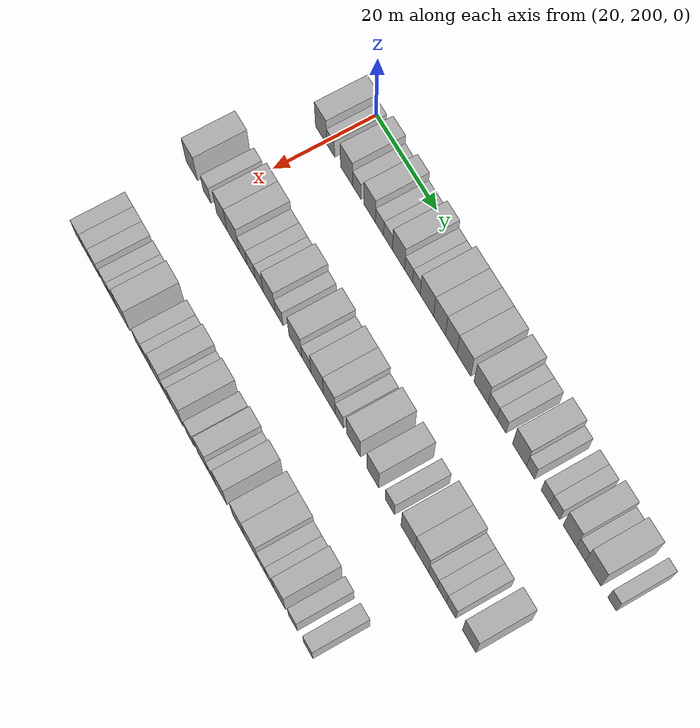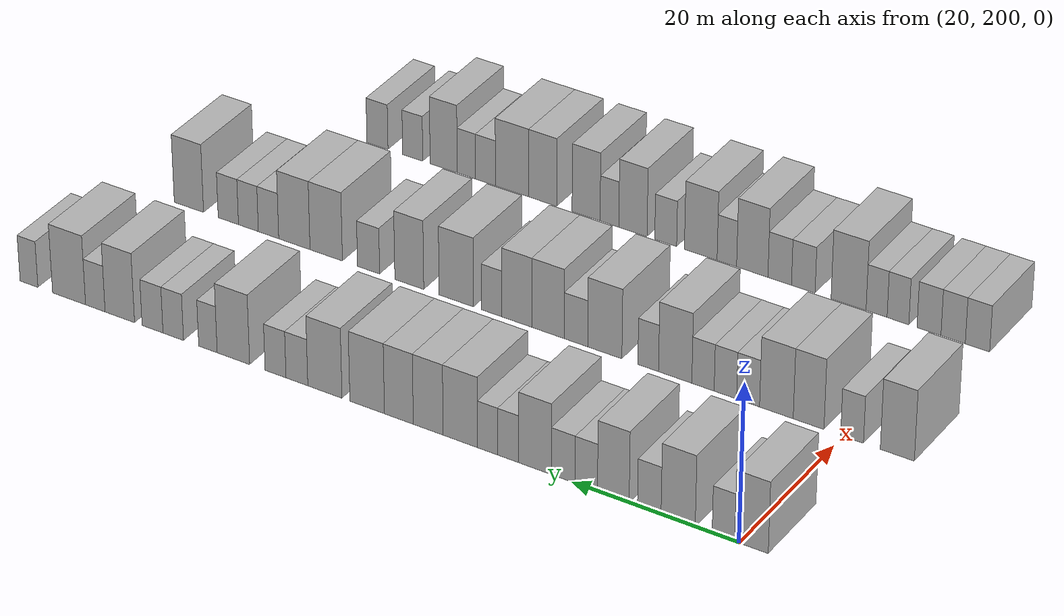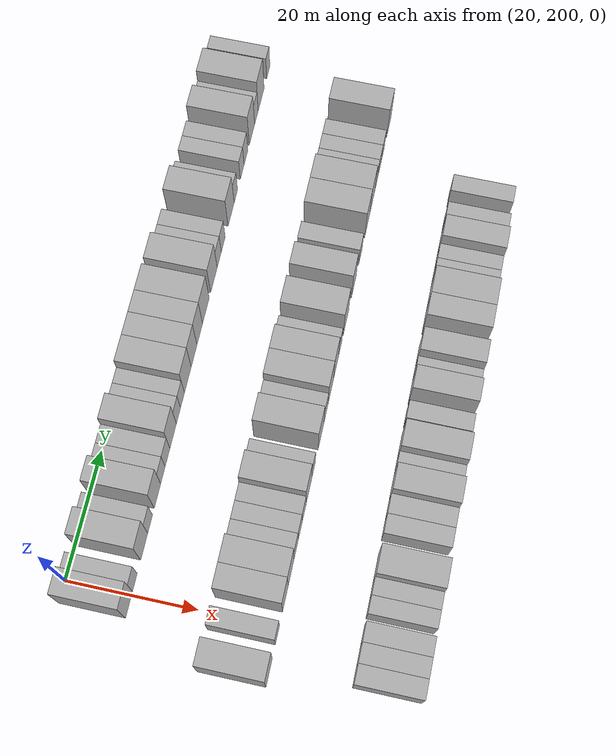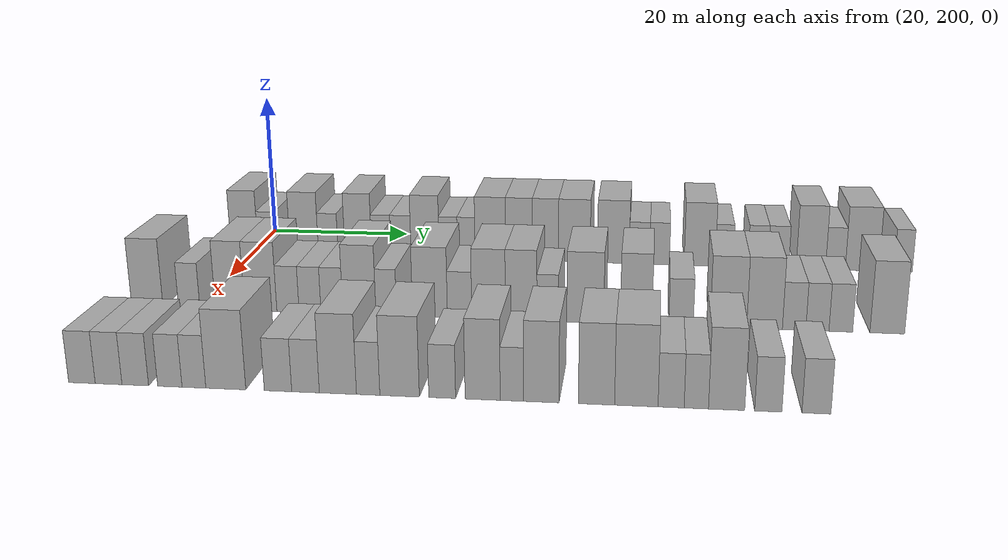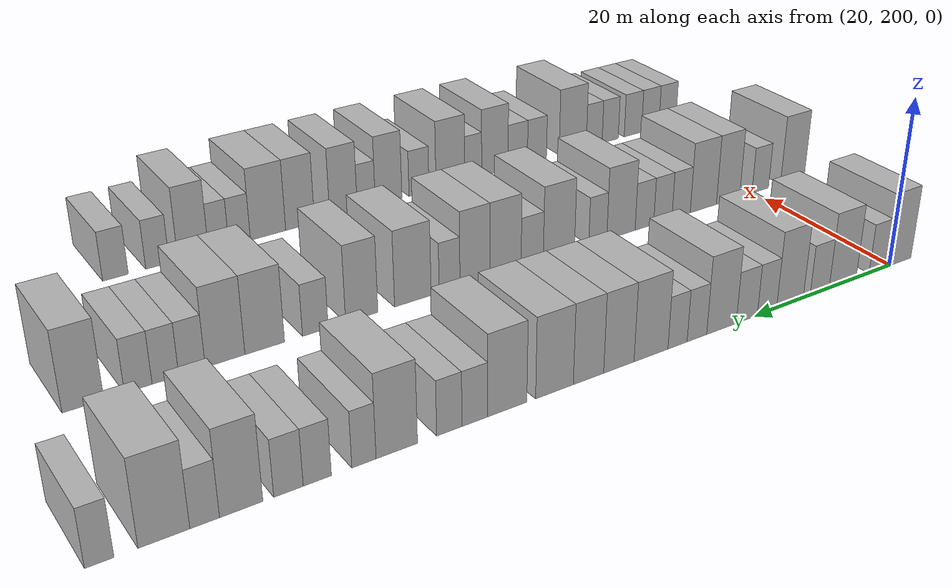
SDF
<sdf version="1.6">
 <world name="default">
  <model name="building_138">
   <static>1</static>
   <pose>25.0000 198.6181 0 0.000000 0.000000 0.000000</pose>
   <link name="link">
    <pose>0 0 4.50 0 0 0</pose>
    <collision name="collision"><geometry><box><size>10.0000 3.9314 9.0000</size></box></geometry></collision>
    <visual name="visual">
     <cast_shadows>0</cast_shadows>
     <geometry><box><size>10.0000 3.9314 9.0000</size></box></geometry>
     <material>
      <script>
       <uri>model://HANNAS_wall/materials/scripts</uri>
       <uri>model://HANNAS_wall/materials/textures</uri>
       <name>vrc/HANNAS_wall</name>
      </script>
     </material>
    </visual>
   </link>
  </model>
  <model name="building_139">
   <static>1</static>
   <pose>25.0000 201.9120 0 0.000000 0.000000 0.000000</pose>
   <link name="link">
    <pose>0 0 3.00 0 0 0</pose>
    <collision name="collision"><geometry><box><size>10.0000 2.6564 6.0000</size></box></geometry></collision>
    <visual name="visual">
     <cast_shadows>0</cast_shadows>
     <geometry><box><size>10.0000 2.6564 6.0000</size></box></geometry>
     <material>
      <script>
       <uri>model://HANNAS_wall/materials/scripts</uri>
       <uri>model://HANNAS_wall/materials/textures</uri>
       <name>vrc/HANNAS_wall</name>
      </script>
     </material>
    </visual>
   </link>
  </model>
  <model name="building_140">
   <static>1</static>
   <pose>25.0000 207.2744 0 0.000000 0.000000 0.000000</pose>
   <link name="link">
    <pose>0 0 4.50 0 0 0</pose>
    <collision name="collision"><geometry><box><size>10.0000 4.0686 9.0000</size></box></geometry></collision>
    <visual name="visual">
     <cast_shadows>0</cast_shadows>
     <geometry><box><size>10.0000 4.0686 9.0000</size></box></geometry>
     <material>
      <script>
       <uri>model://HANNAS_wall/materials/scripts</uri>
       <uri>model://HANNAS_wall/materials/textures</uri>
       <name>vrc/HANNAS_wall</name>
      </script>
     </material>
    </visual>
   </link>
  </model>
  <model name="building_141">
   <static>1</static>
   <pose>25.0000 210.7159 0 0.000000 0.000000 0.000000</pose>
   <link name="link">
    <pose>0 0 3.00 0 0 0</pose>
    <collision name="collision"><geometry><box><size>10.0000 2.8144 6.0000</size></box></geometry></collision>
    <visual name="visual">
     <cast_shadows>0</cast_shadows>
     <geometry><box><size>10.0000 2.8144 6.0000</size></box></geometry>
     <material>
      <script>
       <uri>model://HANNAS_wall/materials/scripts</uri>
       <uri>model://HANNAS_wall/materials/textures</uri>
       <name>vrc/HANNAS_wall</name>
      </script>
     </material>
    </visual>
   </link>
  </model>
  <model name="building_142">
   <static>1</static>
   <pose>25.0000 215.0339 0 0.000000 0.000000 0.000000</pose>
   <link name="link">
    <pose>0 0 4.50 0 0 0</pose>
    <collision name="collision"><geometry><box><size>10.0000 3.8215 9.0000</size></box></geometry></collision>
    <visual name="visual">
     <cast_shadows>0</cast_shadows>
     <geometry><box><size>10.0000 3.8215 9.0000</size></box></geometry>
     <material>
      <script>
       <uri>model://HANNAS_wall/materials/scripts</uri>
       <uri>model://HANNAS_wall/materials/textures</uri>
       <name>vrc/HANNAS_wall</name>
      </script>
     </material>
    </visual>
   </link>
  </model>
  <model name="building_143">
   <static>1</static>
   <pose>25.0000 218.2984 0 0.000000 0.000000 0.000000</pose>
   <link name="link">
    <pose>0 0 3.00 0 0 0</pose>
    <collision name="collision"><geometry><box><size>10.0000 2.7076 6.0000</size></box></geometry></collision>
    <visual name="visual">
     <cast_shadows>0</cast_shadows>
     <geometry><box><size>10.0000 2.7076 6.0000</size></box></geometry>
     <material>
      <script>
       <uri>model://HANNAS_wall/materials/scripts</uri>
       <uri>model://HANNAS_wall/materials/textures</uri>
       <name>vrc/HANNAS_wall</name>
      </script>
     </material>
    </visual>
   </link>
  </model>
  <model name="building_144">
   <static>1</static>
   <pose>25.0000 221.1054 0 0.000000 0.000000 0.000000</pose>
   <link name="link">
    <pose>0 0 3.00 0 0 0</pose>
    <collision name="collision"><geometry><box><size>10.0000 2.9063 6.0000</size></box></geometry></collision>
    <visual name="visual">
     <cast_shadows>0</cast_shadows>
     <geometry><box><size>10.0000 2.9063 6.0000</size></box></geometry>
     <material>
      <script>
       <uri>model://HANNAS_wall/materials/scripts</uri>
       <uri>model://HANNAS_wall/materials/textures</uri>
       <name>vrc/HANNAS_wall</name>
      </script>
     </material>
    </visual>
   </link>
  </model>
  <model name="building_145">
   <static>1</static>
   <pose>25.0000 224.5507 0 0.000000 0.000000 0.000000</pose>
   <link name="link">
    <pose>0 0 4.50 0 0 0</pose>
    <collision name="collision"><geometry><box><size>10.0000 3.9844 9.0000</size></box></geometry></collision>
    <visual name="visual">
     <cast_shadows>0</cast_shadows>
     <geometry><box><size>10.0000 3.9844 9.0000</size></box></geometry>
     <material>
      <script>
       <uri>model://HANNAS_wall/materials/scripts</uri>
       <uri>model://HANNAS_wall/materials/textures</uri>
       <name>vrc/HANNAS_wall</name>
      </script>
     </material>
    </visual>
   </link>
  </model>
  <model name="building_146">
   <static>1</static>
   <pose>25.0000 227.8318 0 0.000000 0.000000 0.000000</pose>
   <link name="link">
    <pose>0 0 3.00 0 0 0</pose>
    <collision name="collision"><geometry><box><size>10.0000 2.5778 6.0000</size></box></geometry></collision>
    <visual name="visual">
     <cast_shadows>0</cast_shadows>
     <geometry><box><size>10.0000 2.5778 6.0000</size></box></geometry>
     <material>
      <script>
       <uri>model://HANNAS_wall/materials/scripts</uri>
       <uri>model://HANNAS_wall/materials/textures</uri>
       <name>vrc/HANNAS_wall</name>
      </script>
     </material>
    </visual>
   </link>
  </model>
  <model name="building_147">
   <static>1</static>
   <pose>25.0000 230.3638 0 0.000000 0.000000 0.000000</pose>
   <link name="link">
    <pose>0 0 3.00 0 0 0</pose>
    <collision name="collision"><geometry><box><size>10.0000 2.4862 6.0000</size></box></geometry></collision>
    <visual name="visual">
     <cast_shadows>0</cast_shadows>
     <geometry><box><size>10.0000 2.4862 6.0000</size></box></geometry>
     <material>
      <script>
       <uri>model://HANNAS_wall/materials/scripts</uri>
       <uri>model://HANNAS_wall/materials/textures</uri>
       <name>vrc/HANNAS_wall</name>
      </script>
     </material>
    </visual>
   </link>
  </model>
  <model name="building_148">
   <static>1</static>
   <pose>25.0000 233.7524 0 0.000000 0.000000 0.000000</pose>
   <link name="link">
    <pose>0 0 4.50 0 0 0</pose>
    <collision name="collision"><geometry><box><size>10.0000 4.2909 9.0000</size></box></geometry></collision>
    <visual name="visual">
     <cast_shadows>0</cast_shadows>
     <geometry><box><size>10.0000 4.2909 9.0000</size></box></geometry>
     <material>
      <script>
       <uri>model://HANNAS_wall/materials/scripts</uri>
       <uri>model://HANNAS_wall/materials/textures</uri>
       <name>vrc/HANNAS_wall</name>
      </script>
     </material>
    </visual>
   </link>
  </model>
  <model name="building_149">
   <static>1</static>
   <pose>25.0000 237.7661 0 0.000000 0.000000 0.000000</pose>
   <link name="link">
    <pose>0 0 4.50 0 0 0</pose>
    <collision name="collision"><geometry><box><size>10.0000 3.7366 9.0000</size></box></geometry></collision>
    <visual name="visual">
     <cast_shadows>0</cast_shadows>
     <geometry><box><size>10.0000 3.7366 9.0000</size></box></geometry>
     <material>
      <script>
       <uri>model://HANNAS_wall/materials/scripts</uri>
       <uri>model://HANNAS_wall/materials/textures</uri>
       <name>vrc/HANNAS_wall</name>
      </script>
     </material>
    </visual>
   </link>
  </model>
  <model name="building_150">
   <static>1</static>
   <pose>25.0000 241.4509 0 0.000000 0.000000 0.000000</pose>
   <link name="link">
    <pose>0 0 4.50 0 0 0</pose>
    <collision name="collision"><geometry><box><size>10.0000 3.6330 9.0000</size></box></geometry></collision>
    <visual name="visual">
     <cast_shadows>0</cast_shadows>
     <geometry><box><size>10.0000 3.6330 9.0000</size></box></geometry>
     <material>
      <script>
       <uri>model://HANNAS_wall/materials/scripts</uri>
       <uri>model://HANNAS_wall/materials/textures</uri>
       <name>vrc/HANNAS_wall</name>
      </script>
     </material>
    </visual>
   </link>
  </model>
  <model name="building_151">
   <static>1</static>
   <pose>25.0000 245.4624 0 0.000000 0.000000 0.000000</pose>
   <link name="link">
    <pose>0 0 4.50 0 0 0</pose>
    <collision name="collision"><geometry><box><size>10.0000 4.3900 9.0000</size></box></geometry></collision>
    <visual name="visual">
     <cast_shadows>0</cast_shadows>
     <geometry><box><size>10.0000 4.3900 9.0000</size></box></geometry>
     <material>
      <script>
       <uri>model://HANNAS_wall/materials/scripts</uri>
       <uri>model://HANNAS_wall/materials/textures</uri>
       <name>vrc/HANNAS_wall</name>
      </script>
     </material>
    </visual>
   </link>
  </model>
  <model name="building_152">
   <static>1</static>
   <pose>25.0000 250.8463 0 0.000000 0.000000 0.000000</pose>
   <link name="link">
    <pose>0 0 4.50 0 0 0</pose>
    <collision name="collision"><geometry><box><size>10.0000 4.3778 9.0000</size></box></geometry></collision>
    <visual name="visual">
     <cast_shadows>0</cast_shadows>
     <geometry><box><size>10.0000 4.3778 9.0000</size></box></geometry>
     <material>
      <script>
       <uri>model://HANNAS_wall/materials/scripts</uri>
       <uri>model://HANNAS_wall/materials/textures</uri>
       <name>vrc/HANNAS_wall</name>
      </script>
     </material>
    </visual>
   </link>
  </model>
  <model name="building_153">
   <static>1</static>
   <pose>25.0000 254.4375 0 0.000000 0.000000 0.000000</pose>
   <link name="link">
    <pose>0 0 3.00 0 0 0</pose>
    <collision name="collision"><geometry><box><size>10.0000 2.8047 6.0000</size></box></geometry></collision>
    <visual name="visual">
     <cast_shadows>0</cast_shadows>
     <geometry><box><size>10.0000 2.8047 6.0000</size></box></geometry>
     <material>
      <script>
       <uri>model://HANNAS_wall/materials/scripts</uri>
       <uri>model://HANNAS_wall/materials/textures</uri>
       <name>vrc/HANNAS_wall</name>
      </script>
     </material>
    </visual>
   </link>
  </model>
  <model name="building_154">
   <static>1</static>
   <pose>25.0000 257.1953 0 0.000000 0.000000 0.000000</pose>
   <link name="link">
    <pose>0 0 3.00 0 0 0</pose>
    <collision name="collision"><geometry><box><size>10.0000 2.7107 6.0000</size></box></geometry></collision>
    <visual name="visual">
     <cast_shadows>0</cast_shadows>
     <geometry><box><size>10.0000 2.7107 6.0000</size></box></geometry>
     <material>
      <script>
       <uri>model://HANNAS_wall/materials/scripts</uri>
       <uri>model://HANNAS_wall/materials/textures</uri>
       <name>vrc/HANNAS_wall</name>
      </script>
     </material>
    </visual>
   </link>
  </model>
  <model name="building_155">
   <static>1</static>
   <pose>25.0000 262.6709 0 0.000000 0.000000 0.000000</pose>
   <link name="link">
    <pose>0 0 4.50 0 0 0</pose>
    <collision name="collision"><geometry><box><size>10.0000 4.2405 9.0000</size></box></geometry></collision>
    <visual name="visual">
     <cast_shadows>0</cast_shadows>
     <geometry><box><size>10.0000 4.2405 9.0000</size></box></geometry>
     <material>
      <script>
       <uri>model://HANNAS_wall/materials/scripts</uri>
       <uri>model://HANNAS_wall/materials/textures</uri>
       <name>vrc/HANNAS_wall</name>
      </script>
     </material>
    </visual>
   </link>
  </model>
  <model name="building_156">
   <static>1</static>
   <pose>25.0000 266.0036 0 0.000000 0.000000 0.000000</pose>
   <link name="link">
    <pose>0 0 3.00 0 0 0</pose>
    <collision name="collision"><geometry><box><size>10.0000 2.4250 6.0000</size></box></geometry></collision>
    <visual name="visual">
     <cast_shadows>0</cast_shadows>
     <geometry><box><size>10.0000 2.4250 6.0000</size></box></geometry>
     <material>
      <script>
       <uri>model://HANNAS_wall/materials/scripts</uri>
       <uri>model://HANNAS_wall/materials/textures</uri>
       <name>vrc/HANNAS_wall</name>
      </script>
     </material>
    </visual>
   </link>
  </model>
  <model name="building_157">
   <static>1</static>
   <pose>25.0000 270.5727 0 0.000000 0.000000 0.000000</pose>
   <link name="link">
    <pose>0 0 3.00 0 0 0</pose>
    <collision name="collision"><geometry><box><size>10.0000 2.7131 6.0000</size></box></geometry></collision>
    <visual name="visual">
     <cast_shadows>0</cast_shadows>
     <geometry><box><size>10.0000 2.7131 6.0000</size></box></geometry>
     <material>
      <script>
       <uri>model://HANNAS_wall/materials/scripts</uri>
       <uri>model://HANNAS_wall/materials/textures</uri>
       <name>vrc/HANNAS_wall</name>
      </script>
     </material>
    </visual>
   </link>
  </model>
  <model name="building_158">
   <static>1</static>
   <pose>25.0000 273.3196 0 0.000000 0.000000 0.000000</pose>
   <link name="link">
    <pose>0 0 3.00 0 0 0</pose>
    <collision name="collision"><geometry><box><size>10.0000 2.7807 6.0000</size></box></geometry></collision>
    <visual name="visual">
     <cast_shadows>0</cast_shadows>
     <geometry><box><size>10.0000 2.7807 6.0000</size></box></geometry>
     <material>
      <script>
       <uri>model://HANNAS_wall/materials/scripts</uri>
       <uri>model://HANNAS_wall/materials/textures</uri>
       <name>vrc/HANNAS_wall</name>
      </script>
     </material>
    </visual>
   </link>
  </model>
  <model name="building_159">
   <static>1</static>
   <pose>25.0000 277.6788 0 0.000000 0.000000 0.000000</pose>
   <link name="link">
    <pose>0 0 4.50 0 0 0</pose>
    <collision name="collision"><geometry><box><size>10.0000 3.9378 9.0000</size></box></geometry></collision>
    <visual name="visual">
     <cast_shadows>0</cast_shadows>
     <geometry><box><size>10.0000 3.9378 9.0000</size></box></geometry>
     <material>
      <script>
       <uri>model://HANNAS_wall/materials/scripts</uri>
       <uri>model://HANNAS_wall/materials/textures</uri>
       <name>vrc/HANNAS_wall</name>
      </script>
     </material>
    </visual>
   </link>
  </model>
  <model name="building_160">
   <static>1</static>
   <pose>25.0000 280.9612 0 0.000000 0.000000 0.000000</pose>
   <link name="link">
    <pose>0 0 3.00 0 0 0</pose>
    <collision name="collision"><geometry><box><size>10.0000 2.6269 6.0000</size></box></geometry></collision>
    <visual name="visual">
     <cast_shadows>0</cast_shadows>
     <geometry><box><size>10.0000 2.6269 6.0000</size></box></geometry>
     <material>
      <script>
       <uri>model://HANNAS_wall/materials/scripts</uri>
       <uri>model://HANNAS_wall/materials/textures</uri>
       <name>vrc/HANNAS_wall</name>
      </script>
     </material>
    </visual>
   </link>
  </model>
  <model name="building_161">
   <static>1</static>
   <pose>25.0000 284.5030 0 0.000000 0.000000 0.000000</pose>
   <link name="link">
    <pose>0 0 4.50 0 0 0</pose>
    <collision name="collision"><geometry><box><size>10.0000 4.4567 9.0000</size></box></geometry></collision>
    <visual name="visual">
     <cast_shadows>0</cast_shadows>
     <geometry><box><size>10.0000 4.4567 9.0000</size></box></geometry>
     <material>
      <script>
       <uri>model://HANNAS_wall/materials/scripts</uri>
       <uri>model://HANNAS_wall/materials/textures</uri>
       <name>vrc/HANNAS_wall</name>
      </script>
     </material>
    </visual>
   </link>
  </model>
  <model name="building_162">
   <static>1</static>
   <pose>25.0000 289.9439 0 0.000000 0.000000 0.000000</pose>
   <link name="link">
    <pose>0 0 3.00 0 0 0</pose>
    <collision name="collision"><geometry><box><size>10.0000 2.4249 6.0000</size></box></geometry></collision>
    <visual name="visual">
     <cast_shadows>0</cast_shadows>
     <geometry><box><size>10.0000 2.4249 6.0000</size></box></geometry>
     <material>
      <script>
       <uri>model://HANNAS_wall/materials/scripts</uri>
       <uri>model://HANNAS_wall/materials/textures</uri>
       <name>vrc/HANNAS_wall</name>
      </script>
     </material>
    </visual>
   </link>
  </model>
  <model name="building_330">
   <static>1</static>
   <pose>47.0000 193.5827 0 0.000000 0.000000 0.000000</pose>
   <link name="link">
    <pose>0 0 4.50 0 0 0</pose>
    <collision name="collision"><geometry><box><size>10.0000 4.0378 9.0000</size></box></geometry></collision>
    <visual name="visual">
     <cast_shadows>0</cast_shadows>
     <geometry><box><size>10.0000 4.0378 9.0000</size></box></geometry>
     <material>
      <script>
       <uri>model://HANNAS_wall/materials/scripts</uri>
       <uri>model://HANNAS_wall/materials/textures</uri>
       <name>vrc/HANNAS_wall</name>
      </script>
     </material>
    </visual>
   </link>
  </model>
  <model name="building_331">
   <static>1</static>
   <pose>47.0000 198.9672 0 0.000000 0.000000 0.000000</pose>
   <link name="link">
    <pose>0 0 3.00 0 0 0</pose>
    <collision name="collision"><geometry><box><size>10.0000 2.7313 6.0000</size></box></geometry></collision>
    <visual name="visual">
     <cast_shadows>0</cast_shadows>
     <geometry><box><size>10.0000 2.7313 6.0000</size></box></geometry>
     <material>
      <script>
       <uri>model://HANNAS_wall/materials/scripts</uri>
       <uri>model://HANNAS_wall/materials/textures</uri>
       <name>vrc/HANNAS_wall</name>
      </script>
     </material>
    </visual>
   </link>
  </model>
  <model name="building_332">
   <static>1</static>
   <pose>47.0000 204.1896 0 0.000000 0.000000 0.000000</pose>
   <link name="link">
    <pose>0 0 4.50 0 0 0</pose>
    <collision name="collision"><geometry><box><size>10.0000 3.7135 9.0000</size></box></geometry></collision>
    <visual name="visual">
     <cast_shadows>0</cast_shadows>
     <geometry><box><size>10.0000 3.7135 9.0000</size></box></geometry>
     <material>
      <script>
       <uri>model://HANNAS_wall/materials/scripts</uri>
       <uri>model://HANNAS_wall/materials/textures</uri>
       <name>vrc/HANNAS_wall</name>
      </script>
     </material>
    </visual>
   </link>
  </model>
  <model name="building_333">
   <static>1</static>
   <pose>47.0000 208.0893 0 0.000000 0.000000 0.000000</pose>
   <link name="link">
    <pose>0 0 4.50 0 0 0</pose>
    <collision name="collision"><geometry><box><size>10.0000 4.0860 9.0000</size></box></geometry></collision>
    <visual name="visual">
     <cast_shadows>0</cast_shadows>
     <geometry><box><size>10.0000 4.0860 9.0000</size></box></geometry>
     <material>
      <script>
       <uri>model://HANNAS_wall/materials/scripts</uri>
       <uri>model://HANNAS_wall/materials/textures</uri>
       <name>vrc/HANNAS_wall</name>
      </script>
     </material>
    </visual>
   </link>
  </model>
  <model name="building_334">
   <static>1</static>
   <pose>47.0000 211.5347 0 0.000000 0.000000 0.000000</pose>
   <link name="link">
    <pose>0 0 3.00 0 0 0</pose>
    <collision name="collision"><geometry><box><size>10.0000 2.8046 6.0000</size></box></geometry></collision>
    <visual name="visual">
     <cast_shadows>0</cast_shadows>
     <geometry><box><size>10.0000 2.8046 6.0000</size></box></geometry>
     <material>
      <script>
       <uri>model://HANNAS_wall/materials/scripts</uri>
       <uri>model://HANNAS_wall/materials/textures</uri>
       <name>vrc/HANNAS_wall</name>
      </script>
     </material>
    </visual>
   </link>
  </model>
  <model name="building_335">
   <static>1</static>
   <pose>47.0000 214.3137 0 0.000000 0.000000 0.000000</pose>
   <link name="link">
    <pose>0 0 3.00 0 0 0</pose>
    <collision name="collision"><geometry><box><size>10.0000 2.7535 6.0000</size></box></geometry></collision>
    <visual name="visual">
     <cast_shadows>0</cast_shadows>
     <geometry><box><size>10.0000 2.7535 6.0000</size></box></geometry>
     <material>
      <script>
       <uri>model://HANNAS_wall/materials/scripts</uri>
       <uri>model://HANNAS_wall/materials/textures</uri>
       <name>vrc/HANNAS_wall</name>
      </script>
     </material>
    </visual>
   </link>
  </model>
  <model name="building_336">
   <static>1</static>
   <pose>47.0000 217.0659 0 0.000000 0.000000 0.000000</pose>
   <link name="link">
    <pose>0 0 3.00 0 0 0</pose>
    <collision name="collision"><geometry><box><size>10.0000 2.7509 6.0000</size></box></geometry></collision>
    <visual name="visual">
     <cast_shadows>0</cast_shadows>
     <geometry><box><size>10.0000 2.7509 6.0000</size></box></geometry>
     <material>
      <script>
       <uri>model://HANNAS_wall/materials/scripts</uri>
       <uri>model://HANNAS_wall/materials/textures</uri>
       <name>vrc/HANNAS_wall</name>
      </script>
     </material>
    </visual>
   </link>
  </model>
  <model name="building_337">
   <static>1</static>
   <pose>47.0000 220.5057 0 0.000000 0.000000 0.000000</pose>
   <link name="link">
    <pose>0 0 4.50 0 0 0</pose>
    <collision name="collision"><geometry><box><size>10.0000 4.1287 9.0000</size></box></geometry></collision>
    <visual name="visual">
     <cast_shadows>0</cast_shadows>
     <geometry><box><size>10.0000 4.1287 9.0000</size></box></geometry>
     <material>
      <script>
       <uri>model://HANNAS_wall/materials/scripts</uri>
       <uri>model://HANNAS_wall/materials/textures</uri>
       <name>vrc/HANNAS_wall</name>
      </script>
     </material>
    </visual>
   </link>
  </model>
  <model name="building_338">
   <static>1</static>
   <pose>47.0000 223.8541 0 0.000000 0.000000 0.000000</pose>
   <link name="link">
    <pose>0 0 3.00 0 0 0</pose>
    <collision name="collision"><geometry><box><size>10.0000 2.5680 6.0000</size></box></geometry></collision>
    <visual name="visual">
     <cast_shadows>0</cast_shadows>
     <geometry><box><size>10.0000 2.5680 6.0000</size></box></geometry>
     <material>
      <script>
       <uri>model://HANNAS_wall/materials/scripts</uri>
       <uri>model://HANNAS_wall/materials/textures</uri>
       <name>vrc/HANNAS_wall</name>
      </script>
     </material>
    </visual>
   </link>
  </model>
  <model name="building_339">
   <static>1</static>
   <pose>47.0000 229.2867 0 0.000000 0.000000 0.000000</pose>
   <link name="link">
    <pose>0 0 4.50 0 0 0</pose>
    <collision name="collision"><geometry><box><size>10.0000 4.2973 9.0000</size></box></geometry></collision>
    <visual name="visual">
     <cast_shadows>0</cast_shadows>
     <geometry><box><size>10.0000 4.2973 9.0000</size></box></geometry>
     <material>
      <script>
       <uri>model://HANNAS_wall/materials/scripts</uri>
       <uri>model://HANNAS_wall/materials/textures</uri>
       <name>vrc/HANNAS_wall</name>
      </script>
     </material>
    </visual>
   </link>
  </model>
  <model name="building_340">
   <static>1</static>
   <pose>47.0000 232.9302 0 0.000000 0.000000 0.000000</pose>
   <link name="link">
    <pose>0 0 3.00 0 0 0</pose>
    <collision name="collision"><geometry><box><size>10.0000 2.9897 6.0000</size></box></geometry></collision>
    <visual name="visual">
     <cast_shadows>0</cast_shadows>
     <geometry><box><size>10.0000 2.9897 6.0000</size></box></geometry>
     <material>
      <script>
       <uri>model://HANNAS_wall/materials/scripts</uri>
       <uri>model://HANNAS_wall/materials/textures</uri>
       <name>vrc/HANNAS_wall</name>
      </script>
     </material>
    </visual>
   </link>
  </model>
  <model name="building_341">
   <static>1</static>
   <pose>47.0000 236.4864 0 0.000000 0.000000 0.000000</pose>
   <link name="link">
    <pose>0 0 4.50 0 0 0</pose>
    <collision name="collision"><geometry><box><size>10.0000 4.1226 9.0000</size></box></geometry></collision>
    <visual name="visual">
     <cast_shadows>0</cast_shadows>
     <geometry><box><size>10.0000 4.1226 9.0000</size></box></geometry>
     <material>
      <script>
       <uri>model://HANNAS_wall/materials/scripts</uri>
       <uri>model://HANNAS_wall/materials/textures</uri>
       <name>vrc/HANNAS_wall</name>
      </script>
     </material>
    </visual>
   </link>
  </model>
  <model name="building_342">
   <static>1</static>
   <pose>47.0000 240.4655 0 0.000000 0.000000 0.000000</pose>
   <link name="link">
    <pose>0 0 4.50 0 0 0</pose>
    <collision name="collision"><geometry><box><size>10.0000 3.8357 9.0000</size></box></geometry></collision>
    <visual name="visual">
     <cast_shadows>0</cast_shadows>
     <geometry><box><size>10.0000 3.8357 9.0000</size></box></geometry>
     <material>
      <script>
       <uri>model://HANNAS_wall/materials/scripts</uri>
       <uri>model://HANNAS_wall/materials/textures</uri>
       <name>vrc/HANNAS_wall</name>
      </script>
     </material>
    </visual>
   </link>
  </model>
  <model name="building_343">
   <static>1</static>
   <pose>47.0000 243.6950 0 0.000000 0.000000 0.000000</pose>
   <link name="link">
    <pose>0 0 3.00 0 0 0</pose>
    <collision name="collision"><geometry><box><size>10.0000 2.6233 6.0000</size></box></geometry></collision>
    <visual name="visual">
     <cast_shadows>0</cast_shadows>
     <geometry><box><size>10.0000 2.6233 6.0000</size></box></geometry>
     <material>
      <script>
       <uri>model://HANNAS_wall/materials/scripts</uri>
       <uri>model://HANNAS_wall/materials/textures</uri>
       <name>vrc/HANNAS_wall</name>
      </script>
     </material>
    </visual>
   </link>
  </model>
  <model name="building_344">
   <static>1</static>
   <pose>47.0000 248.2404 0 0.000000 0.000000 0.000000</pose>
   <link name="link">
    <pose>0 0 4.50 0 0 0</pose>
    <collision name="collision"><geometry><box><size>10.0000 4.4675 9.0000</size></box></geometry></collision>
    <visual name="visual">
     <cast_shadows>0</cast_shadows>
     <geometry><box><size>10.0000 4.4675 9.0000</size></box></geometry>
     <material>
      <script>
       <uri>model://HANNAS_wall/materials/scripts</uri>
       <uri>model://HANNAS_wall/materials/textures</uri>
       <name>vrc/HANNAS_wall</name>
      </script>
     </material>
    </visual>
   </link>
  </model>
  <model name="building_345">
   <static>1</static>
   <pose>47.0000 254.3691 0 0.000000 0.000000 0.000000</pose>
   <link name="link">
    <pose>0 0 4.50 0 0 0</pose>
    <collision name="collision"><geometry><box><size>10.0000 3.7899 9.0000</size></box></geometry></collision>
    <visual name="visual">
     <cast_shadows>0</cast_shadows>
     <geometry><box><size>10.0000 3.7899 9.0000</size></box></geometry>
     <material>
      <script>
       <uri>model://HANNAS_wall/materials/scripts</uri>
       <uri>model://HANNAS_wall/materials/textures</uri>
       <name>vrc/HANNAS_wall</name>
      </script>
     </material>
    </visual>
   </link>
  </model>
  <model name="building_346">
   <static>1</static>
   <pose>47.0000 259.7249 0 0.000000 0.000000 0.000000</pose>
   <link name="link">
    <pose>0 0 3.00 0 0 0</pose>
    <collision name="collision"><geometry><box><size>10.0000 2.9216 6.0000</size></box></geometry></collision>
    <visual name="visual">
     <cast_shadows>0</cast_shadows>
     <geometry><box><size>10.0000 2.9216 6.0000</size></box></geometry>
     <material>
      <script>
       <uri>model://HANNAS_wall/materials/scripts</uri>
       <uri>model://HANNAS_wall/materials/textures</uri>
       <name>vrc/HANNAS_wall</name>
      </script>
     </material>
    </visual>
   </link>
  </model>
  <model name="building_347">
   <static>1</static>
   <pose>47.0000 265.3459 0 0.000000 0.000000 0.000000</pose>
   <link name="link">
    <pose>0 0 4.50 0 0 0</pose>
    <collision name="collision"><geometry><box><size>10.0000 4.3204 9.0000</size></box></geometry></collision>
    <visual name="visual">
     <cast_shadows>0</cast_shadows>
     <geometry><box><size>10.0000 4.3204 9.0000</size></box></geometry>
     <material>
      <script>
       <uri>model://HANNAS_wall/materials/scripts</uri>
       <uri>model://HANNAS_wall/materials/textures</uri>
       <name>vrc/HANNAS_wall</name>
      </script>
     </material>
    </visual>
   </link>
  </model>
  <model name="building_348">
   <static>1</static>
   <pose>47.0000 269.6058 0 0.000000 0.000000 0.000000</pose>
   <link name="link">
    <pose>0 0 4.50 0 0 0</pose>
    <collision name="collision"><geometry><box><size>10.0000 4.1992 9.0000</size></box></geometry></collision>
    <visual name="visual">
     <cast_shadows>0</cast_shadows>
     <geometry><box><size>10.0000 4.1992 9.0000</size></box></geometry>
     <material>
      <script>
       <uri>model://HANNAS_wall/materials/scripts</uri>
       <uri>model://HANNAS_wall/materials/textures</uri>
       <name>vrc/HANNAS_wall</name>
      </script>
     </material>
    </visual>
   </link>
  </model>
  <model name="building_349">
   <static>1</static>
   <pose>47.0000 273.0787 0 0.000000 0.000000 0.000000</pose>
   <link name="link">
    <pose>0 0 3.00 0 0 0</pose>
    <collision name="collision"><geometry><box><size>10.0000 2.7467 6.0000</size></box></geometry></collision>
    <visual name="visual">
     <cast_shadows>0</cast_shadows>
     <geometry><box><size>10.0000 2.7467 6.0000</size></box></geometry>
     <material>
      <script>
       <uri>model://HANNAS_wall/materials/scripts</uri>
       <uri>model://HANNAS_wall/materials/textures</uri>
       <name>vrc/HANNAS_wall</name>
      </script>
     </material>
    </visual>
   </link>
  </model>
  <model name="building_350">
   <static>1</static>
   <pose>47.0000 275.8010 0 0.000000 0.000000 0.000000</pose>
   <link name="link">
    <pose>0 0 3.00 0 0 0</pose>
    <collision name="collision"><geometry><box><size>10.0000 2.6977 6.0000</size></box></geometry></collision>
    <visual name="visual">
     <cast_shadows>0</cast_shadows>
     <geometry><box><size>10.0000 2.6977 6.0000</size></box></geometry>
     <material>
      <script>
       <uri>model://HANNAS_wall/materials/scripts</uri>
       <uri>model://HANNAS_wall/materials/textures</uri>
       <name>vrc/HANNAS_wall</name>
      </script>
     </material>
    </visual>
   </link>
  </model>
  <model name="building_351">
   <static>1</static>
   <pose>47.0000 278.5294 0 0.000000 0.000000 0.000000</pose>
   <link name="link">
    <pose>0 0 3.00 0 0 0</pose>
    <collision name="collision"><geometry><box><size>10.0000 2.7592 6.0000</size></box></geometry></collision>
    <visual name="visual">
     <cast_shadows>0</cast_shadows>
     <geometry><box><size>10.0000 2.7592 6.0000</size></box></geometry>
     <material>
      <script>
       <uri>model://HANNAS_wall/materials/scripts</uri>
       <uri>model://HANNAS_wall/materials/textures</uri>
       <name>vrc/HANNAS_wall</name>
      </script>
     </material>
    </visual>
   </link>
  </model>
  <model name="building_352">
   <static>1</static>
   <pose>47.0000 283.9142 0 0.000000 0.000000 0.000000</pose>
   <link name="link">
    <pose>0 0 4.50 0 0 0</pose>
    <collision name="collision"><geometry><box><size>10.0000 4.0104 9.0000</size></box></geometry></collision>
    <visual name="visual">
     <cast_shadows>0</cast_shadows>
     <geometry><box><size>10.0000 4.0104 9.0000</size></box></geometry>
     <material>
      <script>
       <uri>model://HANNAS_wall/materials/scripts</uri>
       <uri>model://HANNAS_wall/materials/textures</uri>
       <name>vrc/HANNAS_wall</name>
      </script>
     </material>
    </visual>
   </link>
  </model>
  <model name="building_526">
   <static>1</static>
   <pose>69.0000 195.5848 0 0.000000 0.000000 0.000000</pose>
   <link name="link">
    <pose>0 0 3.00 0 0 0</pose>
    <collision name="collision"><geometry><box><size>10.0000 2.9562 6.0000</size></box></geometry></collision>
    <visual name="visual">
     <cast_shadows>0</cast_shadows>
     <geometry><box><size>10.0000 2.9562 6.0000</size></box></geometry>
     <material>
      <script>
       <uri>model://HANNAS_wall/materials/scripts</uri>
       <uri>model://HANNAS_wall/materials/textures</uri>
       <name>vrc/HANNAS_wall</name>
      </script>
     </material>
    </visual>
   </link>
  </model>
  <model name="building_527">
   <static>1</static>
   <pose>69.0000 198.5457 0 0.000000 0.000000 0.000000</pose>
   <link name="link">
    <pose>0 0 3.00 0 0 0</pose>
    <collision name="collision"><geometry><box><size>10.0000 2.9655 6.0000</size></box></geometry></collision>
    <visual name="visual">
     <cast_shadows>0</cast_shadows>
     <geometry><box><size>10.0000 2.9655 6.0000</size></box></geometry>
     <material>
      <script>
       <uri>model://HANNAS_wall/materials/scripts</uri>
       <uri>model://HANNAS_wall/materials/textures</uri>
       <name>vrc/HANNAS_wall</name>
      </script>
     </material>
    </visual>
   </link>
  </model>
  <model name="building_528">
   <static>1</static>
   <pose>69.0000 201.4957 0 0.000000 0.000000 0.000000</pose>
   <link name="link">
    <pose>0 0 3.00 0 0 0</pose>
    <collision name="collision"><geometry><box><size>10.0000 2.9346 6.0000</size></box></geometry></collision>
    <visual name="visual">
     <cast_shadows>0</cast_shadows>
     <geometry><box><size>10.0000 2.9346 6.0000</size></box></geometry>
     <material>
      <script>
       <uri>model://HANNAS_wall/materials/scripts</uri>
       <uri>model://HANNAS_wall/materials/textures</uri>
       <name>vrc/HANNAS_wall</name>
      </script>
     </material>
    </visual>
   </link>
  </model>
  <model name="building_529">
   <static>1</static>
   <pose>69.0000 205.3035 0 0.000000 0.000000 0.000000</pose>
   <link name="link">
    <pose>0 0 3.00 0 0 0</pose>
    <collision name="collision"><geometry><box><size>10.0000 2.6810 6.0000</size></box></geometry></collision>
    <visual name="visual">
     <cast_shadows>0</cast_shadows>
     <geometry><box><size>10.0000 2.6810 6.0000</size></box></geometry>
     <material>
      <script>
       <uri>model://HANNAS_wall/materials/scripts</uri>
       <uri>model://HANNAS_wall/materials/textures</uri>
       <name>vrc/HANNAS_wall</name>
      </script>
     </material>
    </visual>
   </link>
  </model>
  <model name="building_530">
   <static>1</static>
   <pose>69.0000 207.9451 0 0.000000 0.000000 0.000000</pose>
   <link name="link">
    <pose>0 0 3.00 0 0 0</pose>
    <collision name="collision"><geometry><box><size>10.0000 2.6021 6.0000</size></box></geometry></collision>
    <visual name="visual">
     <cast_shadows>0</cast_shadows>
     <geometry><box><size>10.0000 2.6021 6.0000</size></box></geometry>
     <material>
      <script>
       <uri>model://HANNAS_wall/materials/scripts</uri>
       <uri>model://HANNAS_wall/materials/textures</uri>
       <name>vrc/HANNAS_wall</name>
      </script>
     </material>
    </visual>
   </link>
  </model>
  <model name="building_531">
   <static>1</static>
   <pose>69.0000 211.4233 0 0.000000 0.000000 0.000000</pose>
   <link name="link">
    <pose>0 0 4.50 0 0 0</pose>
    <collision name="collision"><geometry><box><size>10.0000 4.3544 9.0000</size></box></geometry></collision>
    <visual name="visual">
     <cast_shadows>0</cast_shadows>
     <geometry><box><size>10.0000 4.3544 9.0000</size></box></geometry>
     <material>
      <script>
       <uri>model://HANNAS_wall/materials/scripts</uri>
       <uri>model://HANNAS_wall/materials/textures</uri>
       <name>vrc/HANNAS_wall</name>
      </script>
     </material>
    </visual>
   </link>
  </model>
  <model name="building_532">
   <static>1</static>
   <pose>69.0000 217.0845 0 0.000000 0.000000 0.000000</pose>
   <link name="link">
    <pose>0 0 3.00 0 0 0</pose>
    <collision name="collision"><geometry><box><size>10.0000 2.9681 6.0000</size></box></geometry></collision>
    <visual name="visual">
     <cast_shadows>0</cast_shadows>
     <geometry><box><size>10.0000 2.9681 6.0000</size></box></geometry>
     <material>
      <script>
       <uri>model://HANNAS_wall/materials/scripts</uri>
       <uri>model://HANNAS_wall/materials/textures</uri>
       <name>vrc/HANNAS_wall</name>
      </script>
     </material>
    </visual>
   </link>
  </model>
  <model name="building_533">
   <static>1</static>
   <pose>69.0000 220.0539 0 0.000000 0.000000 0.000000</pose>
   <link name="link">
    <pose>0 0 3.00 0 0 0</pose>
    <collision name="collision"><geometry><box><size>10.0000 2.9706 6.0000</size></box></geometry></collision>
    <visual name="visual">
     <cast_shadows>0</cast_shadows>
     <geometry><box><size>10.0000 2.9706 6.0000</size></box></geometry>
     <material>
      <script>
       <uri>model://HANNAS_wall/materials/scripts</uri>
       <uri>model://HANNAS_wall/materials/textures</uri>
       <name>vrc/HANNAS_wall</name>
      </script>
     </material>
    </visual>
   </link>
  </model>
  <model name="building_534">
   <static>1</static>
   <pose>69.0000 223.5251 0 0.000000 0.000000 0.000000</pose>
   <link name="link">
    <pose>0 0 4.50 0 0 0</pose>
    <collision name="collision"><geometry><box><size>10.0000 3.9718 9.0000</size></box></geometry></collision>
    <visual name="visual">
     <cast_shadows>0</cast_shadows>
     <geometry><box><size>10.0000 3.9718 9.0000</size></box></geometry>
     <material>
      <script>
       <uri>model://HANNAS_wall/materials/scripts</uri>
       <uri>model://HANNAS_wall/materials/textures</uri>
       <name>vrc/HANNAS_wall</name>
      </script>
     </material>
    </visual>
   </link>
  </model>
  <model name="building_535">
   <static>1</static>
   <pose>69.0000 226.7565 0 0.000000 0.000000 0.000000</pose>
   <link name="link">
    <pose>0 0 3.00 0 0 0</pose>
    <collision name="collision"><geometry><box><size>10.0000 2.4909 6.0000</size></box></geometry></collision>
    <visual name="visual">
     <cast_shadows>0</cast_shadows>
     <geometry><box><size>10.0000 2.4909 6.0000</size></box></geometry>
     <material>
      <script>
       <uri>model://HANNAS_wall/materials/scripts</uri>
       <uri>model://HANNAS_wall/materials/textures</uri>
       <name>vrc/HANNAS_wall</name>
      </script>
     </material>
    </visual>
   </link>
  </model>
  <model name="building_536">
   <static>1</static>
   <pose>69.0000 230.0955 0 0.000000 0.000000 0.000000</pose>
   <link name="link">
    <pose>0 0 4.50 0 0 0</pose>
    <collision name="collision"><geometry><box><size>10.0000 4.1871 9.0000</size></box></geometry></collision>
    <visual name="visual">
     <cast_shadows>0</cast_shadows>
     <geometry><box><size>10.0000 4.1871 9.0000</size></box></geometry>
     <material>
      <script>
       <uri>model://HANNAS_wall/materials/scripts</uri>
       <uri>model://HANNAS_wall/materials/textures</uri>
       <name>vrc/HANNAS_wall</name>
      </script>
     </material>
    </visual>
   </link>
  </model>
  <model name="building_537">
   <static>1</static>
   <pose>69.0000 234.6012 0 0.000000 0.000000 0.000000</pose>
   <link name="link">
    <pose>0 0 3.00 0 0 0</pose>
    <collision name="collision"><geometry><box><size>10.0000 2.8245 6.0000</size></box></geometry></collision>
    <visual name="visual">
     <cast_shadows>0</cast_shadows>
     <geometry><box><size>10.0000 2.8245 6.0000</size></box></geometry>
     <material>
      <script>
       <uri>model://HANNAS_wall/materials/scripts</uri>
       <uri>model://HANNAS_wall/materials/textures</uri>
       <name>vrc/HANNAS_wall</name>
      </script>
     </material>
    </visual>
   </link>
  </model>
  <model name="building_538">
   <static>1</static>
   <pose>69.0000 238.8495 0 0.000000 0.000000 0.000000</pose>
   <link name="link">
    <pose>0 0 4.50 0 0 0</pose>
    <collision name="collision"><geometry><box><size>10.0000 3.6720 9.0000</size></box></geometry></collision>
    <visual name="visual">
     <cast_shadows>0</cast_shadows>
     <geometry><box><size>10.0000 3.6720 9.0000</size></box></geometry>
     <material>
      <script>
       <uri>model://HANNAS_wall/materials/scripts</uri>
       <uri>model://HANNAS_wall/materials/textures</uri>
       <name>vrc/HANNAS_wall</name>
      </script>
     </material>
    </visual>
   </link>
  </model>
  <model name="building_539">
   <static>1</static>
   <pose>69.0000 241.9078 0 0.000000 0.000000 0.000000</pose>
   <link name="link">
    <pose>0 0 3.00 0 0 0</pose>
    <collision name="collision"><geometry><box><size>10.0000 2.4446 6.0000</size></box></geometry></collision>
    <visual name="visual">
     <cast_shadows>0</cast_shadows>
     <geometry><box><size>10.0000 2.4446 6.0000</size></box></geometry>
     <material>
      <script>
       <uri>model://HANNAS_wall/materials/scripts</uri>
       <uri>model://HANNAS_wall/materials/textures</uri>
       <name>vrc/HANNAS_wall</name>
      </script>
     </material>
    </visual>
   </link>
  </model>
  <model name="building_540">
   <static>1</static>
   <pose>69.0000 244.9694 0 0.000000 0.000000 0.000000</pose>
   <link name="link">
    <pose>0 0 4.50 0 0 0</pose>
    <collision name="collision"><geometry><box><size>10.0000 3.6786 9.0000</size></box></geometry></collision>
    <visual name="visual">
     <cast_shadows>0</cast_shadows>
     <geometry><box><size>10.0000 3.6786 9.0000</size></box></geometry>
     <material>
      <script>
       <uri>model://HANNAS_wall/materials/scripts</uri>
       <uri>model://HANNAS_wall/materials/textures</uri>
       <name>vrc/HANNAS_wall</name>
      </script>
     </material>
    </visual>
   </link>
  </model>
  <model name="building_541">
   <static>1</static>
   <pose>69.0000 250.6720 0 0.000000 0.000000 0.000000</pose>
   <link name="link">
    <pose>0 0 4.50 0 0 0</pose>
    <collision name="collision"><geometry><box><size>10.0000 3.7267 9.0000</size></box></geometry></collision>
    <visual name="visual">
     <cast_shadows>0</cast_shadows>
     <geometry><box><size>10.0000 3.7267 9.0000</size></box></geometry>
     <material>
      <script>
       <uri>model://HANNAS_wall/materials/scripts</uri>
       <uri>model://HANNAS_wall/materials/textures</uri>
       <name>vrc/HANNAS_wall</name>
      </script>
     </material>
    </visual>
   </link>
  </model>
  <model name="building_542">
   <static>1</static>
   <pose>69.0000 254.7562 0 0.000000 0.000000 0.000000</pose>
   <link name="link">
    <pose>0 0 4.50 0 0 0</pose>
    <collision name="collision"><geometry><box><size>10.0000 4.4416 9.0000</size></box></geometry></collision>
    <visual name="visual">
     <cast_shadows>0</cast_shadows>
     <geometry><box><size>10.0000 4.4416 9.0000</size></box></geometry>
     <material>
      <script>
       <uri>model://HANNAS_wall/materials/scripts</uri>
       <uri>model://HANNAS_wall/materials/textures</uri>
       <name>vrc/HANNAS_wall</name>
      </script>
     </material>
    </visual>
   </link>
  </model>
  <model name="building_543">
   <static>1</static>
   <pose>69.0000 258.3042 0 0.000000 0.000000 0.000000</pose>
   <link name="link">
    <pose>0 0 3.00 0 0 0</pose>
    <collision name="collision"><geometry><box><size>10.0000 2.6544 6.0000</size></box></geometry></collision>
    <visual name="visual">
     <cast_shadows>0</cast_shadows>
     <geometry><box><size>10.0000 2.6544 6.0000</size></box></geometry>
     <material>
      <script>
       <uri>model://HANNAS_wall/materials/scripts</uri>
       <uri>model://HANNAS_wall/materials/textures</uri>
       <name>vrc/HANNAS_wall</name>
      </script>
     </material>
    </visual>
   </link>
  </model>
  <model name="building_544">
   <static>1</static>
   <pose>69.0000 260.8668 0 0.000000 0.000000 0.000000</pose>
   <link name="link">
    <pose>0 0 3.00 0 0 0</pose>
    <collision name="collision"><geometry><box><size>10.0000 2.4708 6.0000</size></box></geometry></collision>
    <visual name="visual">
     <cast_shadows>0</cast_shadows>
     <geometry><box><size>10.0000 2.4708 6.0000</size></box></geometry>
     <material>
      <script>
       <uri>model://HANNAS_wall/materials/scripts</uri>
       <uri>model://HANNAS_wall/materials/textures</uri>
       <name>vrc/HANNAS_wall</name>
      </script>
     </material>
    </visual>
   </link>
  </model>
  <model name="building_545">
   <static>1</static>
   <pose>69.0000 263.9348 0 0.000000 0.000000 0.000000</pose>
   <link name="link">
    <pose>0 0 4.50 0 0 0</pose>
    <collision name="collision"><geometry><box><size>10.0000 3.6653 9.0000</size></box></geometry></collision>
    <visual name="visual">
     <cast_shadows>0</cast_shadows>
     <geometry><box><size>10.0000 3.6653 9.0000</size></box></geometry>
     <material>
      <script>
       <uri>model://HANNAS_wall/materials/scripts</uri>
       <uri>model://HANNAS_wall/materials/textures</uri>
       <name>vrc/HANNAS_wall</name>
      </script>
     </material>
    </visual>
   </link>
  </model>
  <model name="building_546">
   <static>1</static>
   <pose>69.0000 268.1363 0 0.000000 0.000000 0.000000</pose>
   <link name="link">
    <pose>0 0 3.00 0 0 0</pose>
    <collision name="collision"><geometry><box><size>10.0000 2.7375 6.0000</size></box></geometry></collision>
    <visual name="visual">
     <cast_shadows>0</cast_shadows>
     <geometry><box><size>10.0000 2.7375 6.0000</size></box></geometry>
     <material>
      <script>
       <uri>model://HANNAS_wall/materials/scripts</uri>
       <uri>model://HANNAS_wall/materials/textures</uri>
       <name>vrc/HANNAS_wall</name>
      </script>
     </material>
    </visual>
   </link>
  </model>
  <model name="building_547">
   <static>1</static>
   <pose>69.0000 272.9491 0 0.000000 0.000000 0.000000</pose>
   <link name="link">
    <pose>0 0 3.00 0 0 0</pose>
    <collision name="collision"><geometry><box><size>10.0000 2.8881 6.0000</size></box></geometry></collision>
    <visual name="visual">
     <cast_shadows>0</cast_shadows>
     <geometry><box><size>10.0000 2.8881 6.0000</size></box></geometry>
     <material>
      <script>
       <uri>model://HANNAS_wall/materials/scripts</uri>
       <uri>model://HANNAS_wall/materials/textures</uri>
       <name>vrc/HANNAS_wall</name>
      </script>
     </material>
    </visual>
   </link>
  </model>
 </world>
</sdf>
